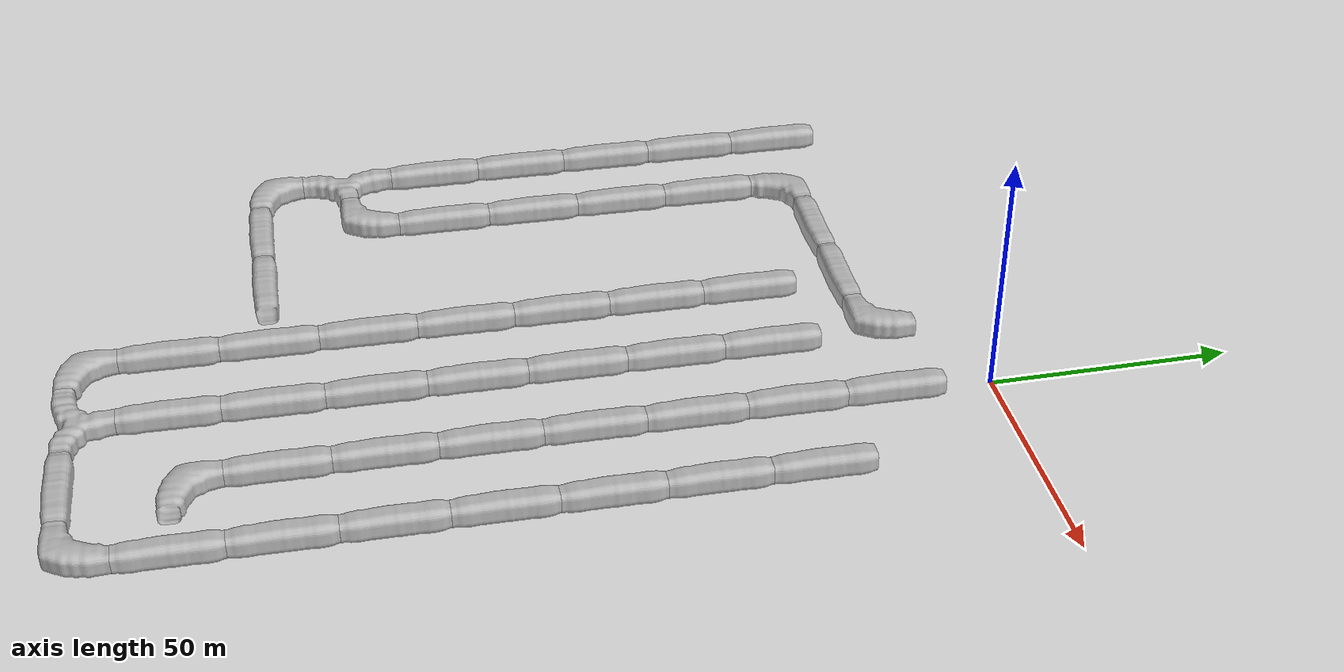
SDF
<sdf version="1.6">
 <world name="cave_4000_32">
  <include>
   <static>true</static>
   <name>cave_1_-2</name>
   <pose>20 -40 0 0 0 0.0</pose>
   <uri>model://cave_straight_20m</uri>
  </include>
  <include>
   <static>true</static>
   <name>cave_1_-3</name>
   <pose>20 -60 0 0 0 0.0</pose>
   <uri>model://cave_straight_20m</uri>
  </include>
  <include>
   <static>true</static>
   <name>cave_1_-4</name>
   <pose>20 -80 0 0 0 0.0</pose>
   <uri>model://cave_straight_20m</uri>
  </include>
  <include>
   <static>true</static>
   <name>cave_1_-5</name>
   <pose>20 -100 0 0 0 0.0</pose>
   <uri>model://cave_straight_20m</uri>
  </include>
  <include>
   <static>true</static>
   <name>cave_1_-6</name>
   <pose>20 -120 0 0 0 0.0</pose>
   <uri>model://cave_straight_20m</uri>
  </include>
  <include>
   <static>true</static>
   <name>cave_1_-7</name>
   <pose>20 -140 0 0 0 0.0</pose>
   <uri>model://cave_straight_20m</uri>
  </include>
  <include>
   <static>true</static>
   <name>cave_1_-8</name>
   <pose>20 -160 0 0 0 0.0</pose>
   <uri>model://cave_straight_20m</uri>
  </include>
  <include>
   <static>true</static>
   <name>cave_1_-9</name>
   <pose>20 -180 0 0 0 1.5707963267948966</pose>
   <uri>model://cave_L_20m</uri>
  </include>
  <include>
   <static>true</static>
   <name>cave_0_-9</name>
   <pose>0 -180 0 0 0 1.5707963267948966</pose>
   <uri>model://cave_straight_20m</uri>
  </include>
  <include>
   <static>true</static>
   <name>cave_-1_-9</name>
   <pose>-20 -180 0 0 0 0.0</pose>
   <uri>model://cave_3way_20m</uri>
  </include>
  <include>
   <static>true</static>
   <name>cave_-2_-9</name>
   <pose>-40 -180 0 0 0 0.0</pose>
   <uri>model://cave_L_20m</uri>
  </include>
  <include>
   <static>true</static>
   <name>cave_-2_-8</name>
   <pose>-40 -160 0 0 0 0.0</pose>
   <uri>model://cave_straight_20m</uri>
  </include>
  <include>
   <static>true</static>
   <name>cave_-2_-7</name>
   <pose>-40 -140 0 0 0 0.0</pose>
   <uri>model://cave_straight_20m</uri>
  </include>
  <include>
   <static>true</static>
   <name>cave_-2_-6</name>
   <pose>-40 -120 0 0 0 0.0</pose>
   <uri>model://cave_straight_20m</uri>
  </include>
  <include>
   <static>true</static>
   <name>cave_-2_-5</name>
   <pose>-40 -100 0 0 0 0.0</pose>
   <uri>model://cave_straight_20m</uri>
  </include>
  <include>
   <static>true</static>
   <name>cave_-2_-4</name>
   <pose>-40 -80 0 0 0 0.0</pose>
   <uri>model://cave_straight_20m</uri>
  </include>
  <include>
   <static>true</static>
   <name>cave_-2_-3</name>
   <pose>-40 -60 0 0 0 0.0</pose>
   <uri>model://cave_straight_20m</uri>
  </include>
  <include>
   <static>true</static>
   <name>cave_-2_-2</name>
   <pose>-40 -40 0 0 0 0.0</pose>
   <uri>model://cave_straight_20m</uri>
  </include>
  <include>
   <static>true</static>
   <name>cave_-1_-8</name>
   <pose>-20 -160 0 0 0 0.0</pose>
   <uri>model://cave_straight_20m</uri>
  </include>
  <include>
   <static>true</static>
   <name>cave_-1_-7</name>
   <pose>-20 -140 0 0 0 0.0</pose>
   <uri>model://cave_straight_20m</uri>
  </include>
  <include>
   <static>true</static>
   <name>cave_-1_-6</name>
   <pose>-20 -120 0 0 0 0.0</pose>
   <uri>model://cave_straight_20m</uri>
  </include>
  <include>
   <static>true</static>
   <name>cave_-1_-5</name>
   <pose>-20 -100 0 0 0 0.0</pose>
   <uri>model://cave_straight_20m</uri>
  </include>
  <include>
   <static>true</static>
   <name>cave_-1_-4</name>
   <pose>-20 -80 0 0 0 0.0</pose>
   <uri>model://cave_straight_20m</uri>
  </include>
  <include>
   <static>true</static>
   <name>cave_-1_-3</name>
   <pose>-20 -60 0 0 0 0.0</pose>
   <uri>model://cave_straight_20m</uri>
  </include>
  <include>
   <static>true</static>
   <name>cave_-1_-2</name>
   <pose>-20 -40 0 0 0 0.0</pose>
   <uri>model://cave_straight_20m</uri>
  </include>
  <include>
   <static>true</static>
   <name>cave_0_-1</name>
   <pose>0 -20 0 0 0 0.0</pose>
   <uri>model://cave_straight_20m</uri>
  </include>
  <include>
   <static>true</static>
   <name>cave_0_-2</name>
   <pose>0 -40 0 0 0 0.0</pose>
   <uri>model://cave_straight_20m</uri>
  </include>
  <include>
   <static>true</static>
   <name>cave_0_-3</name>
   <pose>0 -60 0 0 0 0.0</pose>
   <uri>model://cave_straight_20m</uri>
  </include>
  <include>
   <static>true</static>
   <name>cave_0_-4</name>
   <pose>0 -80 0 0 0 0.0</pose>
   <uri>model://cave_straight_20m</uri>
  </include>
  <include>
   <static>true</static>
   <name>cave_0_-5</name>
   <pose>0 -100 0 0 0 0.0</pose>
   <uri>model://cave_straight_20m</uri>
  </include>
  <include>
   <static>true</static>
   <name>cave_0_-6</name>
   <pose>0 -120 0 0 0 0.0</pose>
   <uri>model://cave_straight_20m</uri>
  </include>
  <include>
   <static>true</static>
   <name>cave_0_-7</name>
   <pose>0 -140 0 0 0 0.0</pose>
   <uri>model://cave_straight_20m</uri>
  </include>
  <include>
   <static>true</static>
   <name>cave_0_-8</name>
   <pose>0 -160 0 0 0 0.0</pose>
   <uri>model://cave_L_20m</uri>
  </include>
  <include>
   <static>true</static>
   <name>cave_-1_-1</name>
   <pose>-20 -20 0 0 0 1.5707963267948966</pose>
   <uri>model://cave_L_20m</uri>
  </include>
  <include>
   <static>true</static>
   <name>cave_-2_-1</name>
   <pose>-40 -20 0 0 0 1.5707963267948966</pose>
   <uri>model://cave_straight_20m</uri>
  </include>
  <include>
   <static>true</static>
   <name>cave_-3_-1</name>
   <pose>-60 -20 0 0 0 1.5707963267948966</pose>
   <uri>model://cave_straight_20m</uri>
  </include>
  <include>
   <static>true</static>
   <name>cave_-4_-1</name>
   <pose>-80 -20 0 0 0 -1.5707963267948966</pose>
   <uri>model://cave_L_20m</uri>
  </include>
  <include>
   <static>true</static>
   <name>cave_-4_-2</name>
   <pose>-80 -40 0 0 0 0.0</pose>
   <uri>model://cave_straight_20m</uri>
  </include>
  <include>
   <static>true</static>
   <name>cave_-4_-3</name>
   <pose>-80 -60 0 0 0 0.0</pose>
   <uri>model://cave_straight_20m</uri>
  </include>
  <include>
   <static>true</static>
   <name>cave_-4_-4</name>
   <pose>-80 -80 0 0 0 0.0</pose>
   <uri>model://cave_straight_20m</uri>
  </include>
  <include>
   <static>true</static>
   <name>cave_-4_-5</name>
   <pose>-80 -100 0 0 0 0.0</pose>
   <uri>model://cave_straight_20m</uri>
  </include>
  <include>
   <static>true</static>
   <name>cave_-4_-6</name>
   <pose>-80 -120 0 0 0 1.5707963267948966</pose>
   <uri>model://cave_L_20m</uri>
  </include>
  <include>
   <static>true</static>
   <name>cave_-5_-6</name>
   <pose>-100 -120 0 0 0 -1.5707963267948966</pose>
   <uri>model://cave_3way_20m</uri>
  </include>
  <include>
   <static>true</static>
   <name>cave_-5_-7</name>
   <pose>-100 -140 0 0 0 0.0</pose>
   <uri>model://cave_L_20m</uri>
  </include>
  <include>
   <static>true</static>
   <name>cave_-4_-7</name>
   <pose>-80 -140 0 0 0 1.5707963267948966</pose>
   <uri>model://cave_straight_20m</uri>
  </include>
  <include>
   <static>true</static>
   <name>cave_-3_-7</name>
   <pose>-60 -140 0 0 0 1.5707963267948966</pose>
   <uri>model://cave_straight_20m</uri>
  </include>
  <include>
   <static>true</static>
   <name>cave_-5_-5</name>
   <pose>-100 -100 0 0 0 0.0</pose>
   <uri>model://cave_straight_20m</uri>
  </include>
  <include>
   <static>true</static>
   <name>cave_-5_-4</name>
   <pose>-100 -80 0 0 0 0.0</pose>
   <uri>model://cave_straight_20m</uri>
  </include>
  <include>
   <static>true</static>
   <name>cave_-5_-3</name>
   <pose>-100 -60 0 0 0 0.0</pose>
   <uri>model://cave_straight_20m</uri>
  </include>
  <include>
   <static>true</static>
   <name>cave_-5_-2</name>
   <pose>-100 -40 0 0 0 0.0</pose>
   <uri>model://cave_straight_20m</uri>
  </include>
  <include>
   <static>true</static>
   <name>cave_-5_-1</name>
   <pose>-100 -20 0 0 0 0.0</pose>
   <uri>model://cave_straight_20m</uri>
  </include>
 </world>
</sdf>
